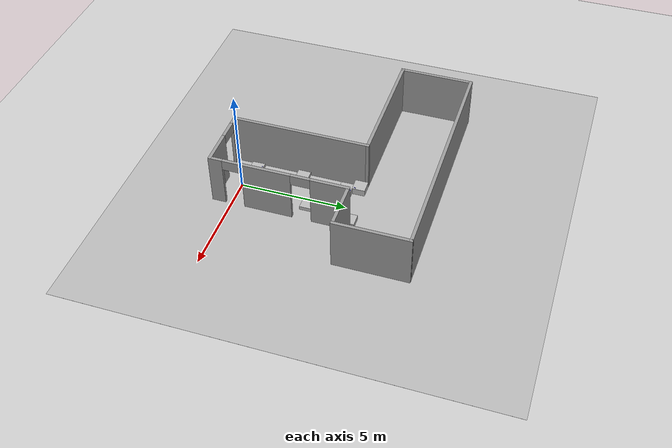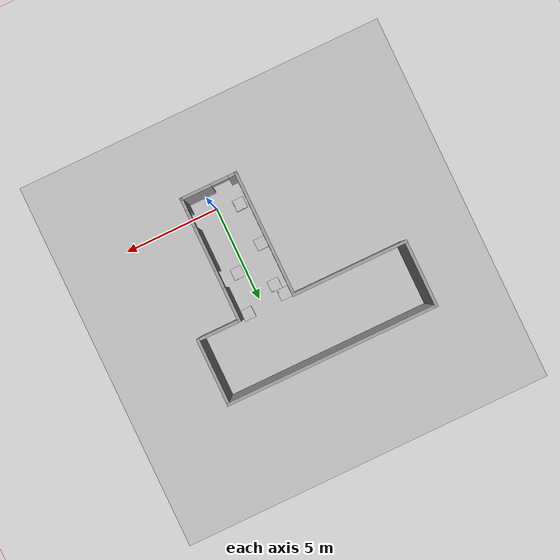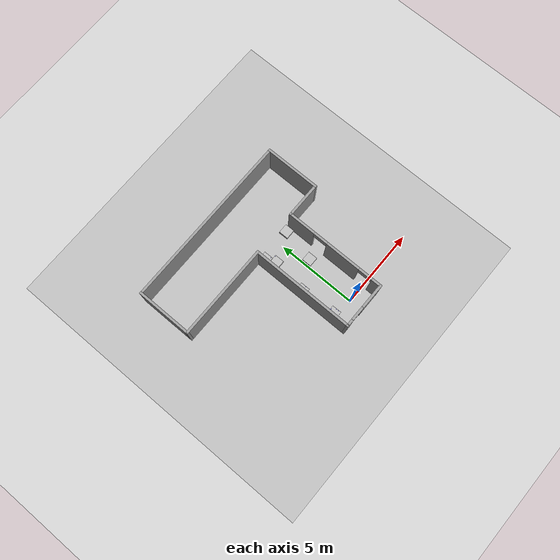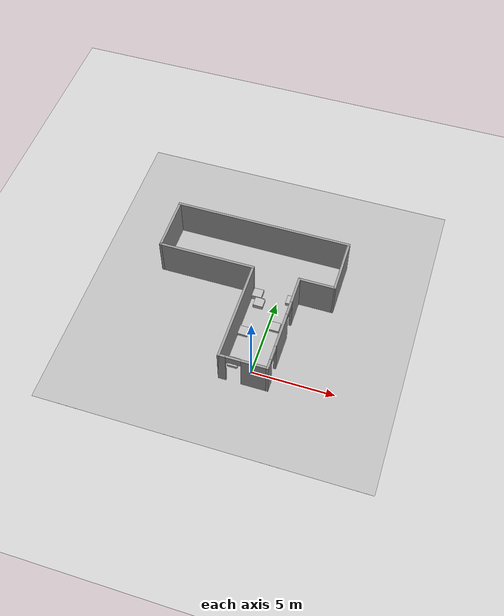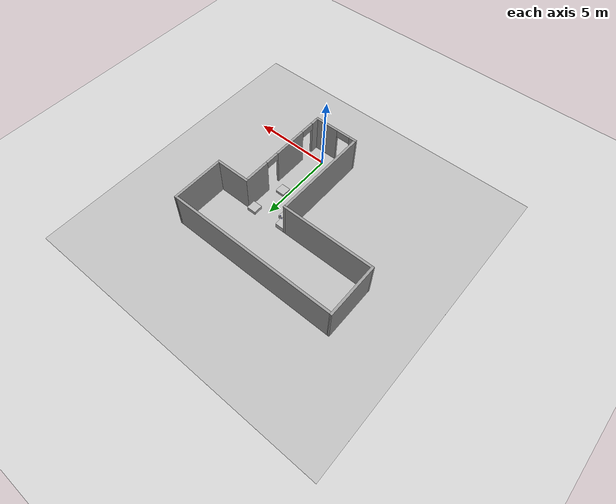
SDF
<sdf version="1.7">
 <world name="default">
  <light name="sun" type="directional">
   <pose>0 0 10 0 -0 0</pose>
   <diffuse>1 0.8 0.6 1</diffuse>
   <specular>1 0.8 0.6 1</specular>
   <attenuation>
    <range>1000</range>
    <constant>0.9</constant>
    <linear>0.01</linear>
    <quadratic>0.001</quadratic>
   </attenuation>
   <direction>-0.5 0.1 -0.9</direction>
   <spot><inner_angle>0</inner_angle><outer_angle>0</outer_angle><falloff>0</falloff></spot>
  </light>
  <model name="ground_plane">
   <static>1</static>
   <link name="link">
    <collision name="collision">
     <geometry><plane><normal>0 0 1</normal><size>100 100</size></plane></geometry>
     <surface>
      <contact><collide_bitmask>65535</collide_bitmask></contact>
      <friction><ode><mu>100</mu><mu2>50</mu2></ode></friction>
     </surface>
    </collision>
    <visual name="visual">
     <cast_shadows>0</cast_shadows>
     <geometry><plane><normal>0 0 1</normal><size>100 100</size></plane></geometry>
     <material>
      <script><uri>file://media/materials/scripts/gazebo.material</uri><name>Gazebo/Grey</name></script>
     </material>
    </visual>
   </link>
  </model>
  <gravity>0 0 -9.8</gravity>
  <magnetic_field>6e-06 2.3e-05 -4.2e-05</magnetic_field>
  <atmosphere type="adiabatic"/>
  <physics type="ode">
   <max_step_size>0.001</max_step_size>
   <real_time_factor>1</real_time_factor>
   <real_time_update_rate>1000</real_time_update_rate>
  </physics>
  <scene><ambient>1 1 1 1</ambient><background>0.7 0.7 0.7 1</background><shadows>1</shadows></scene>
  <spherical_coordinates>
   <surface_model>EARTH_WGS84</surface_model>
   <latitude_deg>0</latitude_deg>
   <longitude_deg>0</longitude_deg>
   <elevation>0</elevation>
   <heading_deg>0</heading_deg>
  </spherical_coordinates>
  <model name="office_corridor">
   <pose>-2.07086 4.01142 0 0 -0 0</pose>
   <link name="Wall_11">
    <collision name="Wall_11_Collision">
     <geometry><box><size>6 0.15 2.5</size></box></geometry>
     <pose>0 0 1.25 0 -0 0</pose>
    </collision>
    <visual name="Wall_11_Visual">
     <pose>0 0 1.25 0 -0 0</pose>
     <geometry><box><size>6 0.15 2.5</size></box></geometry>
     <material>
      <script><uri>file://media/materials/scripts/gazebo.material</uri><name>Gazebo/Grey</name></script>
      <ambient>1 1 1 1</ambient>
     </material>
     <meta><layer>0</layer></meta>
    </visual>
    <pose>-2.5 1.5 0 0 -0 3.14159</pose>
   </link>
   <link name="Wall_12">
    <collision name="Wall_12_Collision">
     <geometry><box><size>3.5 0.15 2.5</size></box></geometry>
     <pose>0 0 1.25 0 -0 0</pose>
    </collision>
    <visual name="Wall_12_Visual">
     <pose>0 0 1.25 0 -0 0</pose>
     <geometry><box><size>3.5 0.15 2.5</size></box></geometry>
     <material>
      <script><uri>file://media/materials/scripts/gazebo.material</uri><name>Gazebo/Grey</name></script>
      <ambient>1 1 1 1</ambient>
     </material>
     <meta><layer>0</layer></meta>
    </visual>
    <pose>-5.425 3.175 0 0 -0 1.5708</pose>
   </link>
   <link name="Wall_13">
    <collision name="Wall_13_Collision">
     <geometry><box><size>11 0.15 2.5</size></box></geometry>
     <pose>0 0 1.25 0 -0 0</pose>
    </collision>
    <visual name="Wall_13_Visual">
     <pose>0 0 1.25 0 -0 0</pose>
     <geometry><box><size>11 0.15 2.5</size></box></geometry>
     <material>
      <script><uri>file://media/materials/scripts/gazebo.material</uri><name>Gazebo/Grey</name></script>
      <ambient>1 1 1 1</ambient>
     </material>
     <meta><layer>0</layer></meta>
    </visual>
    <pose>0 4.85 0 0 -0 0</pose>
   </link>
   <link name="Wall_14">
    <collision name="Wall_14_Collision">
     <geometry><box><size>3.5 0.15 2.5</size></box></geometry>
     <pose>0 0 1.25 0 -0 0</pose>
    </collision>
    <visual name="Wall_14_Visual">
     <pose>0 0 1.25 0 -0 0</pose>
     <geometry><box><size>3.5 0.15 2.5</size></box></geometry>
     <material>
      <script><uri>file://media/materials/scripts/gazebo.material</uri><name>Gazebo/Grey</name></script>
      <ambient>1 1 1 1</ambient>
     </material>
     <meta><layer>0</layer></meta>
    </visual>
    <pose>5.425 3.175 0 0 -0 -1.5708</pose>
   </link>
   <link name="Wall_2">
    <pose>1.85 -4.85 0 0 -0 0</pose>
    <visual name="Wall_2_Visual_0">
     <pose>-1.25944 0 1.25 0 -0 0</pose>
     <geometry><box><size>0.481114 0.15 2.5</size></box></geometry>
     <material>
      <script><uri>file://media/materials/scripts/gazebo.material</uri><name>Gazebo/Grey</name></script>
      <ambient>1 1 1 1</ambient>
     </material>
     <meta><layer>0</layer></meta>
    </visual>
    <collision name="Wall_2_Collision_0">
     <geometry><box><size>0.481114 0.15 2.5</size></box></geometry>
     <pose>-1.25944 0 1.25 0 -0 0</pose>
    </collision>
    <visual name="Wall_2_Visual_1">
     <pose>0.690557 0 1.25 0 -0 0</pose>
     <geometry><box><size>1.61889 0.15 2.5</size></box></geometry>
     <material>
      <script><uri>file://media/materials/scripts/gazebo.material</uri><name>Gazebo/Grey</name></script>
      <ambient>1 1 1 1</ambient>
     </material>
     <meta><layer>0</layer></meta>
    </visual>
    <collision name="Wall_2_Collision_1">
     <geometry><box><size>1.61889 0.15 2.5</size></box></geometry>
     <pose>0.690557 0 1.25 0 -0 0</pose>
    </collision>
    <visual name="Wall_2_Visual_2">
     <pose>-0.568886 0 2.25 0 -0 0</pose>
     <geometry><box><size>0.9 0.15 0.5</size></box></geometry>
     <material>
      <script><uri>file://media/materials/scripts/gazebo.material</uri><name>Gazebo/Grey</name></script>
      <ambient>1 1 1 1</ambient>
     </material>
     <meta><layer>0</layer></meta>
    </visual>
    <collision name="Wall_2_Collision_2">
     <geometry><box><size>0.9 0.15 0.5</size></box></geometry>
     <pose>-0.568886 0 2.25 0 -0 0</pose>
    </collision>
   </link>
   <link name="Wall_5">
    <collision name="Wall_5_Collision">
     <geometry><box><size>6.5 0.15 2.5</size></box></geometry>
     <pose>0 0 1.25 0 -0 0</pose>
    </collision>
    <visual name="Wall_5_Visual">
     <pose>0 0 1.25 0 -0 0</pose>
     <geometry><box><size>6.5 0.15 2.5</size></box></geometry>
     <material>
      <script><uri>file://media/materials/scripts/gazebo.material</uri><name>Gazebo/Grey</name></script>
      <ambient>1 1 1 1</ambient>
     </material>
     <meta><layer>0</layer></meta>
    </visual>
    <pose>0.425 -1.675 0 0 -0 1.5708</pose>
   </link>
   <link name="Wall_7">
    <pose>3.275 -1.675 0 0 -0 1.5708</pose>
    <visual name="Wall_7_Visual_0">
     <pose>-2.92472 0 1.25 0 -0 0</pose>
     <geometry><box><size>0.650562 0.15 2.5</size></box></geometry>
     <material>
      <script><uri>file://media/materials/scripts/gazebo.material</uri><name>Gazebo/Grey</name></script>
      <ambient>1 1 1 1</ambient>
     </material>
     <meta><layer>0</layer></meta>
    </visual>
    <collision name="Wall_7_Collision_0">
     <geometry><box><size>0.650562 0.15 2.5</size></box></geometry>
     <pose>-2.92472 0 1.25 0 -0 0</pose>
    </collision>
    <visual name="Wall_7_Visual_1">
     <pose>-0.567607 0 1.25 0 -0 0</pose>
     <geometry><box><size>2.26366 0.15 2.5</size></box></geometry>
     <material>
      <script><uri>file://media/materials/scripts/gazebo.material</uri><name>Gazebo/Grey</name></script>
      <ambient>1 1 1 1</ambient>
     </material>
     <meta><layer>0</layer></meta>
    </visual>
    <collision name="Wall_7_Collision_1">
     <geometry><box><size>2.26366 0.15 2.5</size></box></geometry>
     <pose>-0.567607 0 1.25 0 -0 0</pose>
    </collision>
    <visual name="Wall_7_Visual_2">
     <pose>2.35711 0 1.25 0 -0 0</pose>
     <geometry><box><size>1.78577 0.15 2.5</size></box></geometry>
     <material>
      <script><uri>file://media/materials/scripts/gazebo.material</uri><name>Gazebo/Grey</name></script>
      <ambient>1 1 1 1</ambient>
     </material>
     <meta><layer>0</layer></meta>
    </visual>
    <collision name="Wall_7_Collision_2">
     <geometry><box><size>1.78577 0.15 2.5</size></box></geometry>
     <pose>2.35711 0 1.25 0 -0 0</pose>
    </collision>
    <visual name="Wall_7_Visual_3">
     <pose>-2.14944 0 2.25 0 -0 0</pose>
     <geometry><box><size>0.9 0.15 0.5</size></box></geometry>
     <material>
      <script><uri>file://media/materials/scripts/gazebo.material</uri><name>Gazebo/Grey</name></script>
      <ambient>1 1 1 1</ambient>
     </material>
     <meta><layer>0</layer></meta>
    </visual>
    <collision name="Wall_7_Collision_3">
     <geometry><box><size>0.9 0.15 0.5</size></box></geometry>
     <pose>-2.14944 0 2.25 0 -0 0</pose>
    </collision>
    <visual name="Wall_7_Visual_4">
     <pose>1.01422 0 2.25 0 -0 0</pose>
     <geometry><box><size>0.9 0.15 0.5</size></box></geometry>
     <material>
      <script><uri>file://media/materials/scripts/gazebo.material</uri><name>Gazebo/Grey</name></script>
      <ambient>1 1 1 1</ambient>
     </material>
     <meta><layer>0</layer></meta>
    </visual>
    <collision name="Wall_7_Collision_4">
     <geometry><box><size>0.9 0.15 0.5</size></box></geometry>
     <pose>1.01422 0 2.25 0 -0 0</pose>
    </collision>
   </link>
   <link name="Wall_8">
    <collision name="Wall_8_Collision">
     <geometry><box><size>2.25 0.15 2.5</size></box></geometry>
     <pose>0 0 1.25 0 -0 0</pose>
    </collision>
    <visual name="Wall_8_Visual">
     <pose>0 0 1.25 0 -0 0</pose>
     <geometry><box><size>2.25 0.15 2.5</size></box></geometry>
     <material>
      <script><uri>file://media/materials/scripts/gazebo.material</uri><name>Gazebo/Grey</name></script>
      <ambient>1 1 1 1</ambient>
     </material>
     <meta><layer>0</layer></meta>
    </visual>
    <pose>4.325 1.5 0 0 -0 0</pose>
   </link>
   <static>1</static>
  </model>
  <model name="Floor_room">
   <link name="main">
    <pose>0 0 0.01 0 -0 0</pose>
    <collision name="main_Collision"><geometry><box><size>20 20 0.001</size></box></geometry></collision>
    <visual name="main_Visual">
     <geometry><box><size>20 20 0.001</size></box></geometry>
     <material>
      <script>
       <uri>model://Floor_room/materials/scripts</uri>
       <uri>model://Floor_room/materials/textures</uri>
       <name>floor_room</name>
      </script>
     </material>
    </visual>
   </link>
   <static>1</static>
   <pose>-1.45961 4.76592 0 0 -0 0</pose>
  </model>
  <model name="unit_box_SMALL">
   <pose>-1.16745 0.27779 0.1005 0 -0 0.007743</pose>
   <link name="link">
    <inertial>
     <mass>1</mass>
     <inertia>
      <ixx>1.56e-06</ixx>
      <ixy>0</ixy>
      <ixz>0</ixz>
      <iyy>1.56e-06</iyy>
      <iyz>0</iyz>
      <izz>1.2e-07</izz>
     </inertia>
    </inertial>
    <collision name="collision"><geometry><box><size>0.6 0.6 0.18</size></box></geometry></collision>
    <visual name="visual">
     <geometry><box><size>0.6 0.6 0.18</size></box></geometry>
     <material>
      <script>
       <uri>model://side_table_1/materials/scripts</uri>
       <uri>model://side_table_1/materials/textures</uri>
       <name>side_table_1</name>
      </script>
     </material>
    </visual>
   </link>
   <static>1</static>
  </model>
  <model name="unit_box_SMALL_clone">
   <pose>-1.28737 2.51181 0.1005 0 -0 0.007743</pose>
   <link name="link">
    <inertial>
     <mass>1</mass>
     <inertia>
      <ixx>1.56e-06</ixx>
      <ixy>0</ixy>
      <ixz>0</ixz>
      <iyy>1.56e-06</iyy>
      <iyz>0</iyz>
      <izz>1.2e-07</izz>
     </inertia>
    </inertial>
    <collision name="collision"><geometry><box><size>0.6 0.6 0.18</size></box></geometry></collision>
    <visual name="visual">
     <geometry><box><size>0.6 0.6 0.18</size></box></geometry>
     <material>
      <script>
       <uri>model://side_table_1/materials/scripts</uri>
       <uri>model://side_table_1/materials/textures</uri>
       <name>side_table_1</name>
      </script>
     </material>
    </visual>
   </link>
   <static>1</static>
  </model>
  <model name="unit_box_SMALL_clone_0">
   <pose>-1.26832 5.2896 0.1005 0 -0 0.007743</pose>
   <link name="link">
    <inertial>
     <mass>1</mass>
     <inertia>
      <ixx>1.56e-06</ixx>
      <ixy>0</ixy>
      <ixz>0</ixz>
      <iyy>1.56e-06</iyy>
      <iyz>0</iyz>
      <izz>1.2e-07</izz>
     </inertia>
    </inertial>
    <collision name="collision"><geometry><box><size>0.6 0.6 0.46</size></box></geometry></collision>
    <visual name="visual">
     <geometry><box><size>0.6 0.6 0.46</size></box></geometry>
     <material>
      <script>
       <uri>model://side_table_1/materials/scripts</uri>
       <uri>model://side_table_1/materials/textures</uri>
       <name>side_table_1</name>
      </script>
     </material>
    </visual>
   </link>
   <static>1</static>
  </model>
  <model name="unit_box_SMALL_clone_1">
   <pose>-1.00556 4.69545 0.1005 0 -0 0.007743</pose>
   <link name="link">
    <inertial>
     <mass>1</mass>
     <inertia>
      <ixx>1.56e-06</ixx>
      <ixy>0</ixy>
      <ixz>0</ixz>
      <iyy>1.56e-06</iyy>
      <iyz>0</iyz>
      <izz>1.2e-07</izz>
     </inertia>
    </inertial>
    <collision name="collision"><geometry><box><size>0.6 0.6 0.36</size></box></geometry></collision>
    <visual name="visual">
     <geometry><box><size>0.6 0.6 0.36</size></box></geometry>
     <material>
      <script>
       <uri>model://side_table_1/materials/scripts</uri>
       <uri>model://side_table_1/materials/textures</uri>
       <name>side_table_1</name>
      </script>
     </material>
    </visual>
   </link>
   <static>1</static>
  </model>
  <model name="unit_box_SMALL_clone_2">
   <pose>0.41022 3.34969 0.1005 0 -0 0.007743</pose>
   <link name="link">
    <inertial>
     <mass>1</mass>
     <inertia>
      <ixx>1.56e-06</ixx>
      <ixy>0</ixy>
      <ixz>0</ixz>
      <iyy>1.56e-06</iyy>
      <iyz>0</iyz>
      <izz>1.2e-07</izz>
     </inertia>
    </inertial>
    <collision name="collision"><geometry><box><size>0.6 0.6 0.18</size></box></geometry></collision>
    <visual name="visual">
     <geometry><box><size>0.6 0.6 0.18</size></box></geometry>
     <material>
      <script>
       <uri>model://side_table_1/materials/scripts</uri>
       <uri>model://side_table_1/materials/textures</uri>
       <name>side_table_1</name>
      </script>
     </material>
    </visual>
   </link>
   <static>1</static>
  </model>
  <model name="unit_box_SMALL_clone_2_clone">
   <pose>0.81695 5.43498 0.1005 0 -0 0.007743</pose>
   <link name="link">
    <inertial>
     <mass>1</mass>
     <inertia>
      <ixx>1.56e-06</ixx>
      <ixy>0</ixy>
      <ixz>0</ixz>
      <iyy>1.56e-06</iyy>
      <iyz>0</iyz>
      <izz>1.2e-07</izz>
     </inertia>
    </inertial>
    <collision name="collision"><geometry><box><size>0.6 0.6 0.28</size></box></geometry></collision>
    <visual name="visual">
     <geometry><box><size>0.6 0.6 0.28</size></box></geometry>
     <material>
      <script>
       <uri>model://side_table_1/materials/scripts</uri>
       <uri>model://side_table_1/materials/textures</uri>
       <name>side_table_1</name>
      </script>
     </material>
    </visual>
   </link>
   <static>1</static>
  </model>
  <model name="box_b">
   <pose>-0.908229 0.143712 0.220499 2.5e-05 5.4e-05 0.012378</pose>
   <link name="link">
    <inertial>
     <mass>0.005</mass>
     <inertia>
      <ixx>1.56e-06</ixx>
      <ixy>0</ixy>
      <ixz>0</ixz>
      <iyy>1.56e-06</iyy>
      <iyz>0</iyz>
      <izz>1.2e-07</izz>
     </inertia>
    </inertial>
    <collision name="collision">
     <geometry><box><size>0.015 0.015 0.06</size></box></geometry>
     <surface><friction><mu>0.1</mu><mu2>0.1</mu2><slip1>0.1</slip1><slip2>0.1</slip2></friction></surface>
    </collision>
    <visual name="visual">
     <geometry><box><size>0.015 0.015 0.06</size></box></geometry>
     <material>
      <script><name>Gazebo/Grey</name><uri>file://media/materials/scripts/gazebo.material</uri></script>
      <ambient>0 0 1 1</ambient>
      <diffuse>0 0 1 1</diffuse>
      <specular>0 0 0 1</specular>
      <emissive>0 0 0 1</emissive>
     </material>
    </visual>
   </link>
  </model>
  <model name="box_b_clone">
   <pose>-0.890539 0.213824 0.2205 -1e-05 -5.5e-05 0.011597</pose>
   <link name="link">
    <inertial>
     <mass>0.005</mass>
     <inertia>
      <ixx>1.56e-06</ixx>
      <ixy>0</ixy>
      <ixz>0</ixz>
      <iyy>1.56e-06</iyy>
      <iyz>0</iyz>
      <izz>1.2e-07</izz>
     </inertia>
    </inertial>
    <collision name="collision"><geometry><box><size>0.015 0.015 0.06</size></box></geometry></collision>
    <visual name="visual">
     <geometry><box><size>0.015 0.015 0.06</size></box></geometry>
     <material>
      <script><name>Gazebo/Grey</name><uri>file://media/materials/scripts/gazebo.material</uri></script>
      <ambient>0 0 1 1</ambient>
      <diffuse>0 0 1 1</diffuse>
      <specular>0 0 0 1</specular>
      <emissive>0 0 0 1</emissive>
     </material>
    </visual>
   </link>
  </model>
  <model name="box_b_clone_0">
   <pose>-0.919007 0.280883 0.220499 2.3e-05 4.7e-05 0.0124</pose>
   <link name="link">
    <inertial>
     <mass>0.005</mass>
     <inertia>
      <ixx>1.56e-06</ixx>
      <ixy>0</ixy>
      <ixz>0</ixz>
      <iyy>1.56e-06</iyy>
      <iyz>0</iyz>
      <izz>1.2e-07</izz>
     </inertia>
    </inertial>
    <collision name="collision"><geometry><box><size>0.015 0.015 0.06</size></box></geometry></collision>
    <visual name="visual">
     <geometry><box><size>0.015 0.015 0.06</size></box></geometry>
     <material>
      <script><name>Gazebo/Grey</name><uri>file://media/materials/scripts/gazebo.material</uri></script>
      <ambient>0 0 1 1</ambient>
      <diffuse>0 0 1 1</diffuse>
      <specular>0 0 0 1</specular>
      <emissive>0 0 0 1</emissive>
     </material>
    </visual>
   </link>
  </model>
  <model name="box_b_clone_1">
   <pose>-1.08157 0.51797 0.220499 -3.2e-05 -4.9e-05 0.014028</pose>
   <link name="link">
    <inertial>
     <mass>0.005</mass>
     <inertia>
      <ixx>1.56e-06</ixx>
      <ixy>0</ixy>
      <ixz>0</ixz>
      <iyy>1.56e-06</iyy>
      <iyz>0</iyz>
      <izz>1.2e-07</izz>
     </inertia>
    </inertial>
    <collision name="collision"><geometry><box><size>0.015 0.015 0.06</size></box></geometry></collision>
    <visual name="visual">
     <geometry><box><size>0.015 0.015 0.06</size></box></geometry>
     <material>
      <script><name>Gazebo/Grey</name><uri>file://media/materials/scripts/gazebo.material</uri></script>
      <ambient>0 0 1 1</ambient>
      <diffuse>0 0 1 1</diffuse>
      <specular>0 0 0 1</specular>
      <emissive>0 0 0 1</emissive>
     </material>
    </visual>
   </link>
  </model>
  <model name="box_b_clone_2">
   <pose>-1.13585 0.555098 0.2205 -3.8e-05 -2.2e-05 0.013072</pose>
   <link name="link">
    <inertial>
     <mass>0.005</mass>
     <inertia>
      <ixx>1.56e-06</ixx>
      <ixy>0</ixy>
      <ixz>0</ixz>
      <iyy>1.56e-06</iyy>
      <iyz>0</iyz>
      <izz>1.2e-07</izz>
     </inertia>
    </inertial>
    <collision name="collision"><geometry><box><size>0.015 0.015 0.06</size></box></geometry></collision>
    <visual name="visual">
     <geometry><box><size>0.015 0.015 0.06</size></box></geometry>
     <material>
      <script><name>Gazebo/Grey</name><uri>file://media/materials/scripts/gazebo.material</uri></script>
      <ambient>0 0 1 1</ambient>
      <diffuse>0 0 1 1</diffuse>
      <specular>0 0 0 1</specular>
      <emissive>0 0 0 1</emissive>
     </material>
    </visual>
   </link>
  </model>
  <model name="box_b_clone_3">
   <pose>-1.21792 0.54055 0.2205 -8e-06 5.6e-05 0.010419</pose>
   <link name="link">
    <inertial>
     <mass>0.005</mass>
     <inertia>
      <ixx>1.56e-06</ixx>
      <ixy>0</ixy>
      <ixz>0</ixz>
      <iyy>1.56e-06</iyy>
      <iyz>0</iyz>
      <izz>1.2e-07</izz>
     </inertia>
    </inertial>
    <collision name="collision"><geometry><box><size>0.015 0.015 0.06</size></box></geometry></collision>
    <visual name="visual">
     <geometry><box><size>0.015 0.015 0.06</size></box></geometry>
     <material>
      <script><name>Gazebo/Grey</name><uri>file://media/materials/scripts/gazebo.material</uri></script>
      <ambient>0 0 1 1</ambient>
      <diffuse>0 0 1 1</diffuse>
      <specular>0 0 0 1</specular>
      <emissive>0 0 0 1</emissive>
     </material>
    </visual>
   </link>
  </model>
  <model name="box_b_clone_4">
   <pose>-1.01716 2.45541 0.2205 4.8e-05 -1.8e-05 0.011462</pose>
   <link name="link">
    <inertial>
     <mass>0.005</mass>
     <inertia>
      <ixx>1.56e-06</ixx>
      <ixy>0</ixy>
      <ixz>0</ixz>
      <iyy>1.56e-06</iyy>
      <iyz>0</iyz>
      <izz>1.2e-07</izz>
     </inertia>
    </inertial>
    <collision name="collision"><geometry><box><size>0.015 0.015 0.06</size></box></geometry></collision>
    <visual name="visual">
     <geometry><box><size>0.015 0.015 0.06</size></box></geometry>
     <material>
      <script><name>Gazebo/Grey</name><uri>file://media/materials/scripts/gazebo.material</uri></script>
      <ambient>0 0 1 1</ambient>
      <diffuse>0 0 1 1</diffuse>
      <specular>0 0 0 1</specular>
      <emissive>0 0 0 1</emissive>
     </material>
    </visual>
   </link>
  </model>
  <model name="box_b_clone_5">
   <pose>-1.01277 2.51661 0.2205 3.3e-05 2.2e-05 0.012145</pose>
   <link name="link">
    <inertial>
     <mass>0.005</mass>
     <inertia>
      <ixx>1.56e-06</ixx>
      <ixy>0</ixy>
      <ixz>0</ixz>
      <iyy>1.56e-06</iyy>
      <iyz>0</iyz>
      <izz>1.2e-07</izz>
     </inertia>
    </inertial>
    <collision name="collision"><geometry><box><size>0.015 0.015 0.06</size></box></geometry></collision>
    <visual name="visual">
     <geometry><box><size>0.015 0.015 0.06</size></box></geometry>
     <material>
      <script><name>Gazebo/Grey</name><uri>file://media/materials/scripts/gazebo.material</uri></script>
      <ambient>0 0 1 1</ambient>
      <diffuse>0 0 1 1</diffuse>
      <specular>0 0 0 1</specular>
      <emissive>0 0 0 1</emissive>
     </material>
    </visual>
   </link>
  </model>
  <model name="box_b_clone_6">
   <pose>-0.785844 4.96005 0.310499 -4.2e-05 -4.4e-05 0.00771</pose>
   <link name="link">
    <inertial>
     <mass>0.005</mass>
     <inertia>
      <ixx>1.56e-06</ixx>
      <ixy>0</ixy>
      <ixz>0</ixz>
      <iyy>1.56e-06</iyy>
      <iyz>0</iyz>
      <izz>1.2e-07</izz>
     </inertia>
    </inertial>
    <collision name="collision"><geometry><box><size>0.015 0.015 0.06</size></box></geometry></collision>
    <visual name="visual">
     <geometry><box><size>0.015 0.015 0.06</size></box></geometry>
     <material>
      <script><name>Gazebo/Grey</name><uri>file://media/materials/scripts/gazebo.material</uri></script>
      <ambient>0 0 1 1</ambient>
      <diffuse>0 0 1 1</diffuse>
      <specular>0 0 0 1</specular>
      <emissive>0 0 0 1</emissive>
     </material>
    </visual>
   </link>
  </model>
  <model name="box_b_clone_6_clone">
   <pose>-0.843738 4.95476 0.3105 -2.7e-05 -3.2e-05 0.012077</pose>
   <link name="link">
    <inertial>
     <mass>0.005</mass>
     <inertia>
      <ixx>1.56e-06</ixx>
      <ixy>0</ixy>
      <ixz>0</ixz>
      <iyy>1.56e-06</iyy>
      <iyz>0</iyz>
      <izz>1.2e-07</izz>
     </inertia>
    </inertial>
    <collision name="collision"><geometry><box><size>0.015 0.015 0.06</size></box></geometry></collision>
    <visual name="visual">
     <geometry><box><size>0.015 0.015 0.06</size></box></geometry>
     <material>
      <script><name>Gazebo/Grey</name><uri>file://media/materials/scripts/gazebo.material</uri></script>
      <ambient>0 0 1 1</ambient>
      <diffuse>0 0 1 1</diffuse>
      <specular>0 0 0 1</specular>
      <emissive>0 0 0 1</emissive>
     </material>
    </visual>
   </link>
  </model>
  <model name="box_b_clone_6_clone_clone">
   <pose>-1.02987 5.09173 0.3605 -3.9e-05 1e-05 0.01229</pose>
   <link name="link">
    <inertial>
     <mass>0.005</mass>
     <inertia>
      <ixx>1.56e-06</ixx>
      <ixy>0</ixy>
      <ixz>0</ixz>
      <iyy>1.56e-06</iyy>
      <iyz>0</iyz>
      <izz>1.2e-07</izz>
     </inertia>
    </inertial>
    <collision name="collision"><geometry><box><size>0.015 0.015 0.06</size></box></geometry></collision>
    <visual name="visual">
     <geometry><box><size>0.015 0.015 0.06</size></box></geometry>
     <material>
      <script><name>Gazebo/Grey</name><uri>file://media/materials/scripts/gazebo.material</uri></script>
      <ambient>0 0 1 1</ambient>
      <diffuse>0 0 1 1</diffuse>
      <specular>0 0 0 1</specular>
      <emissive>0 0 0 1</emissive>
     </material>
    </visual>
   </link>
  </model>
  <model name="box_b_clone_6_clone_clone_clone">
   <pose>-1.01918 5.14847 0.3605 -7e-06 -5.1e-05 0.010315</pose>
   <link name="link">
    <inertial>
     <mass>0.005</mass>
     <inertia>
      <ixx>1.56e-06</ixx>
      <ixy>0</ixy>
      <ixz>0</ixz>
      <iyy>1.56e-06</iyy>
      <iyz>0</iyz>
      <izz>1.2e-07</izz>
     </inertia>
    </inertial>
    <collision name="collision"><geometry><box><size>0.015 0.015 0.06</size></box></geometry></collision>
    <visual name="visual">
     <geometry><box><size>0.015 0.015 0.06</size></box></geometry>
     <material>
      <script><name>Gazebo/Grey</name><uri>file://media/materials/scripts/gazebo.material</uri></script>
      <ambient>0 0 1 1</ambient>
      <diffuse>0 0 1 1</diffuse>
      <specular>0 0 0 1</specular>
      <emissive>0 0 0 1</emissive>
     </material>
    </visual>
   </link>
  </model>
 </world>
</sdf>
